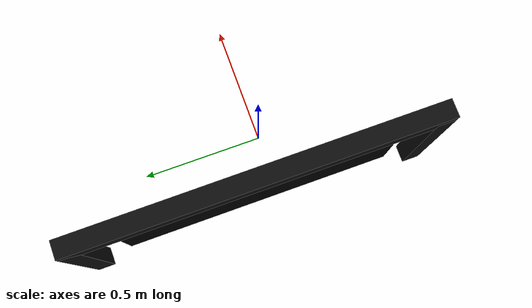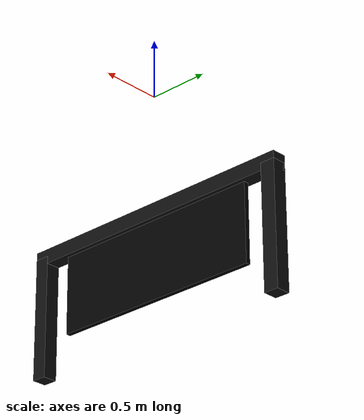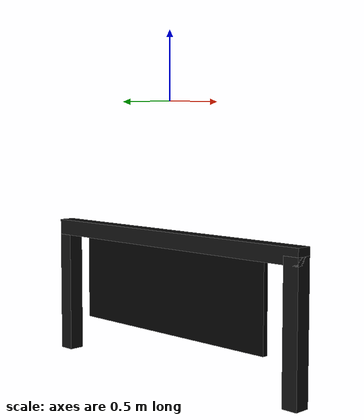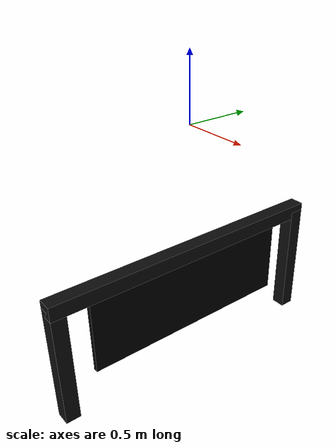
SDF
<?xml version="1.0"?>
<!-- Gate opening 2 m wide; frame at 1 m depth (center z=-1 in ENU, surface z=0). -->
<sdf version="1.9">
  <model name="marv_gate">
    <static>true</static>
    <link name="link">
      <pose>0 0 -1 0 0 0</pose>
      <!-- Left post -->
      <visual name="post_l">
        <pose>0 -1.15 -0.5 0 0 0</pose>
        <geometry><box><size>0.12 0.12 1.0</size></box></geometry>
        <material><ambient>0.02 0.02 0.02 1</ambient><diffuse>0.05 0.05 0.05 1</diffuse></material>
      </visual>
      <collision name="post_l"><pose>0 -1.15 -0.5 0 0 0</pose><geometry><box><size>0.12 0.12 1.0</size></box></geometry></collision>
      <!-- Right post -->
      <visual name="post_r">
        <pose>0 1.15 -0.5 0 0 0</pose>
        <geometry><box><size>0.12 0.12 1.0</size></box></geometry>
        <material><ambient>0.02 0.02 0.02 1</ambient><diffuse>0.05 0.05 0.05 1</diffuse></material>
      </visual>
      <collision name="post_r"><pose>0 1.15 -0.5 0 0 0</pose><geometry><box><size>0.12 0.12 1.0</size></box></geometry></collision>
      <!-- Top bar -->
      <visual name="top_bar">
        <pose>0 0 0.0 0 0 0</pose>
        <geometry><box><size>0.12 2.42 0.12</size></box></geometry>
        <material><ambient>0.02 0.02 0.02 1</ambient><diffuse>0.05 0.05 0.05 1</diffuse></material>
      </visual>
      <collision name="top_bar"><pose>0 0 0.0 0 0 0</pose><geometry><box><size>0.12 2.42 0.12</size></box></geometry></collision>
      <!-- All-black panel for OpenCV black_gate detection -->
      <visual name="panel">
        <pose>0 0 -0.35 0 0 0</pose>
        <geometry><box><size>0.04 1.8 0.7</size></box></geometry>
        <material><ambient>0 0 0 1</ambient><diffuse>0 0 0 1</diffuse></material>
      </visual>
    </link>
  </model>
</sdf>
